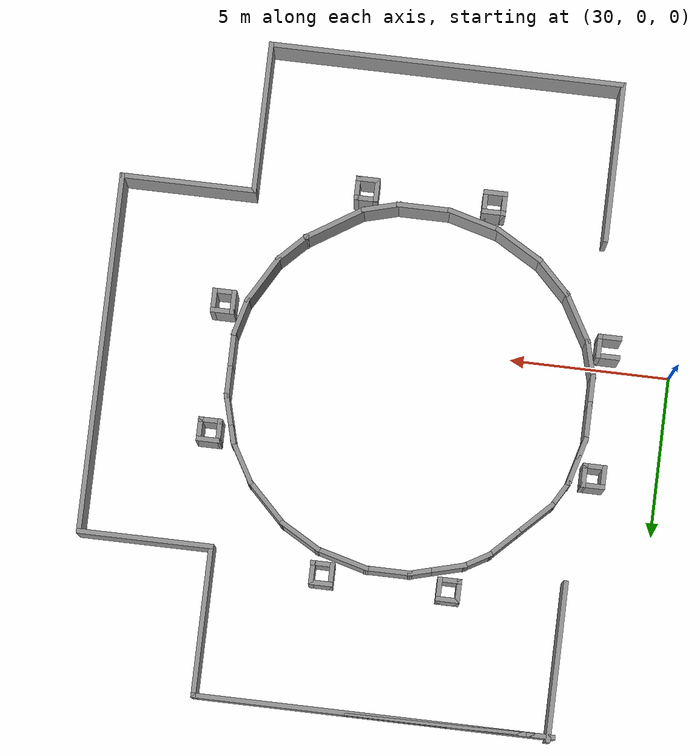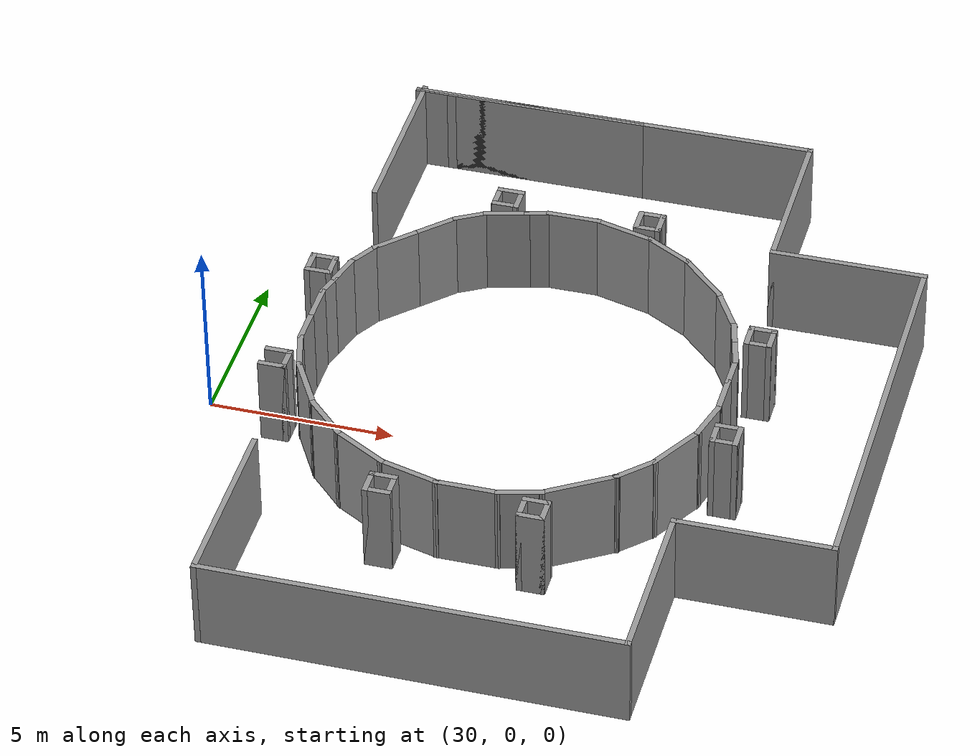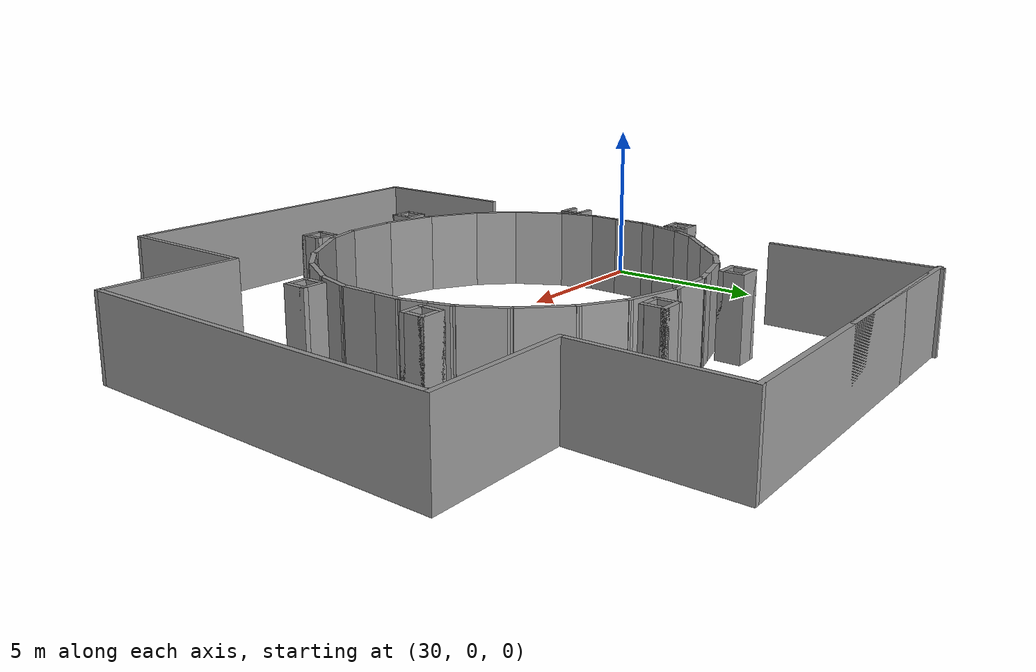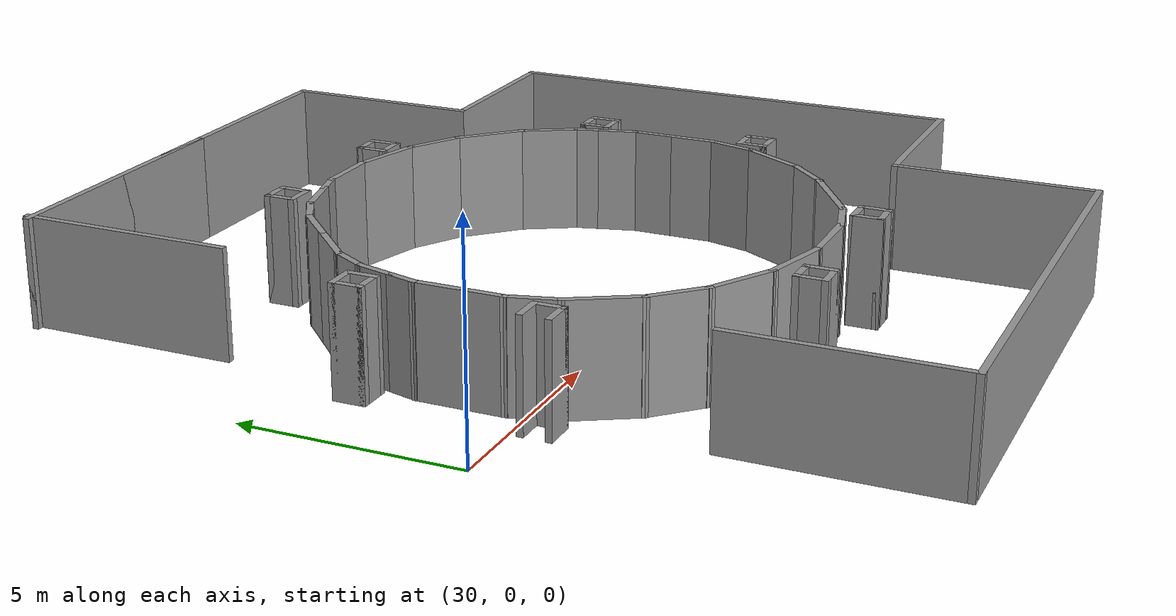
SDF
<sdf version="1.7">
 <model name="TD">
  <pose>-6.31602 -6.69767 0 0 -0 0</pose>
  <link name="Wall_104">
   <collision name="Wall_104_Collision">
    <geometry><box><size>4.25 0.15 2.5</size></box></geometry>
    <pose>0 0 1.25 0 -0 0</pose>
   </collision>
   <visual name="Wall_104_Visual">
    <pose>0 0 1.25 0 -0 0</pose>
    <geometry><box><size>4.25 0.15 2.5</size></box></geometry>
    <material>
     <script><uri>file://media/materials/scripts/gazebo.material</uri><name>Gazebo/Grey</name></script>
     <ambient>1 1 1 1</ambient>
    </material>
    <meta><layer>0</layer></meta>
   </visual>
   <pose>51.8827 2.59678 0 0 -0 3.14159</pose>
  </link>
  <link name="Wall_105">
   <collision name="Wall_105_Collision">
    <geometry><box><size>4.75 0.15 2.5</size></box></geometry>
    <pose>0 0 1.25 0 -0 0</pose>
   </collision>
   <visual name="Wall_105_Visual">
    <pose>0 0 1.25 0 -0 0</pose>
    <geometry><box><size>4.75 0.15 2.5</size></box></geometry>
    <material>
     <script><uri>file://media/materials/scripts/gazebo.material</uri><name>Gazebo/Grey</name></script>
     <ambient>1 1 1 1</ambient>
    </material>
    <meta><layer>0</layer></meta>
   </visual>
   <pose>49.8327 0.296781 0 0 -0 -1.5708</pose>
  </link>
  <link name="Wall_107">
   <collision name="Wall_107_Collision">
    <geometry><box><size>11.1374 0.15 2.5</size></box></geometry>
    <pose>0 0 1.25 0 -0 0</pose>
   </collision>
   <visual name="Wall_107_Visual">
    <pose>0 0 1.25 0 -0 0</pose>
    <geometry><box><size>11.1374 0.15 2.5</size></box></geometry>
    <material>
     <script><uri>file://media/materials/scripts/gazebo.material</uri><name>Gazebo/Grey</name></script>
     <ambient>1 1 1 1</ambient>
    </material>
    <meta><layer>0</layer></meta>
   </visual>
   <pose>44.3391 -2.00322 0 0 -0 3.14159</pose>
  </link>
  <link name="Wall_108">
   <collision name="Wall_108_Collision">
    <geometry><box><size>5 0.15 2.5</size></box></geometry>
    <pose>0 0 1.25 0 -0 0</pose>
   </collision>
   <visual name="Wall_108_Visual">
    <pose>0 0 1.25 0 -0 0</pose>
    <geometry><box><size>5 0.15 2.5</size></box></geometry>
    <material>
     <script><uri>file://media/materials/scripts/gazebo.material</uri><name>Gazebo/Grey</name></script>
     <ambient>1 1 1 1</ambient>
    </material>
    <meta><layer>0</layer></meta>
   </visual>
   <pose>38.8455 0.421781 0 0 -0 1.5708</pose>
  </link>
  <link name="Wall_293">
   <collision name="Wall_293_Collision">
    <geometry><box><size>0.75 0.15 2.5</size></box></geometry>
    <pose>0 0 1.25 0 -0 0</pose>
   </collision>
   <visual name="Wall_293_Visual">
    <pose>0 0 1.25 0 -0 0</pose>
    <geometry><box><size>0.75 0.15 2.5</size></box></geometry>
    <material>
     <script><uri>file://media/materials/scripts/gazebo.material</uri><name>Gazebo/Grey</name></script>
     <ambient>1 1 1 1</ambient>
    </material>
    <meta><layer>0</layer></meta>
   </visual>
   <pose>38.3841 10.4826 0 0 -0 0</pose>
  </link>
  <link name="Wall_294">
   <collision name="Wall_294_Collision">
    <geometry><box><size>0.75 0.15 2.5</size></box></geometry>
    <pose>0 0 1.25 0 -0 0</pose>
   </collision>
   <visual name="Wall_294_Visual">
    <pose>0 0 1.25 0 -0 0</pose>
    <geometry><box><size>0.75 0.15 2.5</size></box></geometry>
    <material>
     <script><uri>file://media/materials/scripts/gazebo.material</uri><name>Gazebo/Grey</name></script>
     <ambient>1 1 1 1</ambient>
    </material>
    <meta><layer>0</layer></meta>
   </visual>
   <pose>38.6841 10.1826 0 0 -0 -1.5708</pose>
  </link>
  <link name="Wall_295">
   <collision name="Wall_295_Collision">
    <geometry><box><size>0.75 0.15 2.5</size></box></geometry>
    <pose>0 0 1.25 0 -0 0</pose>
   </collision>
   <visual name="Wall_295_Visual">
    <pose>0 0 1.25 0 -0 0</pose>
    <geometry><box><size>0.75 0.15 2.5</size></box></geometry>
    <material>
     <script><uri>file://media/materials/scripts/gazebo.material</uri><name>Gazebo/Grey</name></script>
     <ambient>1 1 1 1</ambient>
    </material>
    <meta><layer>0</layer></meta>
   </visual>
   <pose>38.3841 9.88264 0 0 -0 3.14159</pose>
  </link>
  <link name="Wall_296">
   <collision name="Wall_296_Collision">
    <geometry><box><size>0.75 0.15 2.5</size></box></geometry>
    <pose>0 0 1.25 0 -0 0</pose>
   </collision>
   <visual name="Wall_296_Visual">
    <pose>0 0 1.25 0 -0 0</pose>
    <geometry><box><size>0.75 0.15 2.5</size></box></geometry>
    <material>
     <script><uri>file://media/materials/scripts/gazebo.material</uri><name>Gazebo/Grey</name></script>
     <ambient>1 1 1 1</ambient>
    </material>
    <meta><layer>0</layer></meta>
   </visual>
   <pose>38.0841 10.1826 0 0 -0 1.5708</pose>
  </link>
  <link name="Wall_299">
   <collision name="Wall_299_Collision">
    <geometry><box><size>0.75 0.15 2.5</size></box></geometry>
    <pose>0 0 1.25 0 -0 0</pose>
   </collision>
   <visual name="Wall_299_Visual">
    <pose>0 0 1.25 0 -0 0</pose>
    <geometry><box><size>0.75 0.15 2.5</size></box></geometry>
    <material>
     <script><uri>file://media/materials/scripts/gazebo.material</uri><name>Gazebo/Grey</name></script>
     <ambient>1 1 1 1</ambient>
    </material>
    <meta><layer>0</layer></meta>
   </visual>
   <pose>42.4212 14.4817 0 0 -0 0</pose>
  </link>
  <link name="Wall_300">
   <collision name="Wall_300_Collision">
    <geometry><box><size>0.75 0.15 2.5</size></box></geometry>
    <pose>0 0 1.25 0 -0 0</pose>
   </collision>
   <visual name="Wall_300_Visual">
    <pose>0 0 1.25 0 -0 0</pose>
    <geometry><box><size>0.75 0.15 2.5</size></box></geometry>
    <material>
     <script><uri>file://media/materials/scripts/gazebo.material</uri><name>Gazebo/Grey</name></script>
     <ambient>1 1 1 1</ambient>
    </material>
    <meta><layer>0</layer></meta>
   </visual>
   <pose>42.7212 14.1817 0 0 -0 -1.5708</pose>
  </link>
  <link name="Wall_301">
   <collision name="Wall_301_Collision">
    <geometry><box><size>0.75 0.15 2.5</size></box></geometry>
    <pose>0 0 1.25 0 -0 0</pose>
   </collision>
   <visual name="Wall_301_Visual">
    <pose>0 0 1.25 0 -0 0</pose>
    <geometry><box><size>0.75 0.15 2.5</size></box></geometry>
    <material>
     <script><uri>file://media/materials/scripts/gazebo.material</uri><name>Gazebo/Grey</name></script>
     <ambient>1 1 1 1</ambient>
    </material>
    <meta><layer>0</layer></meta>
   </visual>
   <pose>42.4212 13.8817 0 0 -0 3.14159</pose>
  </link>
  <link name="Wall_302">
   <collision name="Wall_302_Collision">
    <geometry><box><size>0.75 0.15 2.5</size></box></geometry>
    <pose>0 0 1.25 0 -0 0</pose>
   </collision>
   <visual name="Wall_302_Visual">
    <pose>0 0 1.25 0 -0 0</pose>
    <geometry><box><size>0.75 0.15 2.5</size></box></geometry>
    <material>
     <script><uri>file://media/materials/scripts/gazebo.material</uri><name>Gazebo/Grey</name></script>
     <ambient>1 1 1 1</ambient>
    </material>
    <meta><layer>0</layer></meta>
   </visual>
   <pose>42.1212 14.1817 0 0 -0 1.5708</pose>
  </link>
  <link name="Wall_306">
   <collision name="Wall_306_Collision">
    <geometry><box><size>0.75 0.15 2.5</size></box></geometry>
    <pose>0 0 1.25 0 -0 0</pose>
   </collision>
   <visual name="Wall_306_Visual">
    <pose>0 0 1.25 0 -0 0</pose>
    <geometry><box><size>0.75 0.15 2.5</size></box></geometry>
    <material>
     <script><uri>file://media/materials/scripts/gazebo.material</uri><name>Gazebo/Grey</name></script>
     <ambient>1 1 1 1</ambient>
    </material>
    <meta><layer>0</layer></meta>
   </visual>
   <pose>46.359 14.4301 0 0 -0 0</pose>
  </link>
  <link name="Wall_307">
   <collision name="Wall_307_Collision">
    <geometry><box><size>0.75 0.15 2.5</size></box></geometry>
    <pose>0 0 1.25 0 -0 0</pose>
   </collision>
   <visual name="Wall_307_Visual">
    <pose>0 0 1.25 0 -0 0</pose>
    <geometry><box><size>0.75 0.15 2.5</size></box></geometry>
    <material>
     <script><uri>file://media/materials/scripts/gazebo.material</uri><name>Gazebo/Grey</name></script>
     <ambient>1 1 1 1</ambient>
    </material>
    <meta><layer>0</layer></meta>
   </visual>
   <pose>46.659 14.1301 0 0 -0 -1.5708</pose>
  </link>
  <link name="Wall_309">
   <collision name="Wall_309_Collision">
    <geometry><box><size>0.75 0.15 2.5</size></box></geometry>
    <pose>0 0 1.25 0 -0 0</pose>
   </collision>
   <visual name="Wall_309_Visual">
    <pose>0 0 1.25 0 -0 0</pose>
    <geometry><box><size>0.75 0.15 2.5</size></box></geometry>
    <material>
     <script><uri>file://media/materials/scripts/gazebo.material</uri><name>Gazebo/Grey</name></script>
     <ambient>1 1 1 1</ambient>
    </material>
    <meta><layer>0</layer></meta>
   </visual>
   <pose>46.059 14.1301 0 0 -0 -1.5708</pose>
  </link>
  <link name="Wall_310">
   <collision name="Wall_310_Collision">
    <geometry><box><size>0.75 0.15 2.5</size></box></geometry>
    <pose>0 0 1.25 0 -0 0</pose>
   </collision>
   <visual name="Wall_310_Visual">
    <pose>0 0 1.25 0 -0 0</pose>
    <geometry><box><size>0.75 0.15 2.5</size></box></geometry>
    <material>
     <script><uri>file://media/materials/scripts/gazebo.material</uri><name>Gazebo/Grey</name></script>
     <ambient>1 1 1 1</ambient>
    </material>
    <meta><layer>0</layer></meta>
   </visual>
   <pose>46.359 13.8301 0 0 -0 0</pose>
  </link>
  <link name="Wall_311">
   <collision name="Wall_311_Collision">
    <geometry><box><size>0.16 0.15 2.5</size></box></geometry>
    <pose>0 0 1.25 0 -0 0</pose>
   </collision>
   <visual name="Wall_311_Visual">
    <pose>0 0 1.25 0 -0 0</pose>
    <geometry><box><size>0.16 0.15 2.5</size></box></geometry>
    <material>
     <script><uri>file://media/materials/scripts/gazebo.material</uri><name>Gazebo/Grey</name></script>
     <ambient>1 1 1 1</ambient>
    </material>
    <meta><layer>0</layer></meta>
   </visual>
   <pose>46.664 13.8301 0 0 -0 0</pose>
  </link>
  <link name="Wall_313">
   <collision name="Wall_313_Collision">
    <geometry><box><size>0.75 0.15 2.5</size></box></geometry>
    <pose>0 0 1.25 0 -0 0</pose>
   </collision>
   <visual name="Wall_313_Visual">
    <pose>0 0 1.25 0 -0 0</pose>
    <geometry><box><size>0.75 0.15 2.5</size></box></geometry>
    <material>
     <script><uri>file://media/materials/scripts/gazebo.material</uri><name>Gazebo/Grey</name></script>
     <ambient>1 1 1 1</ambient>
    </material>
    <meta><layer>0</layer></meta>
   </visual>
   <pose>38.3756 6.4564 0 0 -0 0</pose>
  </link>
  <link name="Wall_316">
   <collision name="Wall_316_Collision">
    <geometry><box><size>0.75 0.15 2.5</size></box></geometry>
    <pose>0 0 1.25 0 -0 0</pose>
   </collision>
   <visual name="Wall_316_Visual">
    <pose>0 0 1.25 0 -0 0</pose>
    <geometry><box><size>0.75 0.15 2.5</size></box></geometry>
    <material>
     <script><uri>file://media/materials/scripts/gazebo.material</uri><name>Gazebo/Grey</name></script>
     <ambient>1 1 1 1</ambient>
    </material>
    <meta><layer>0</layer></meta>
   </visual>
   <pose>38.6756 6.1564 0 0 -0 -1.5708</pose>
  </link>
  <link name="Wall_320">
   <collision name="Wall_320_Collision">
    <geometry><box><size>0.75 0.15 2.5</size></box></geometry>
    <pose>0 0 1.25 0 -0 0</pose>
   </collision>
   <visual name="Wall_320_Visual">
    <pose>0 0 1.25 0 -0 0</pose>
    <geometry><box><size>0.75 0.15 2.5</size></box></geometry>
    <material>
     <script><uri>file://media/materials/scripts/gazebo.material</uri><name>Gazebo/Grey</name></script>
     <ambient>1 1 1 1</ambient>
    </material>
    <meta><layer>0</layer></meta>
   </visual>
   <pose>38.3756 5.8564 0 0 -0 0</pose>
  </link>
  <link name="Wall_321">
   <collision name="Wall_321_Collision">
    <geometry><box><size>0.15 0.15 2.5</size></box></geometry>
    <pose>0 0 1.25 0 -0 0</pose>
   </collision>
   <visual name="Wall_321_Visual">
    <pose>0 0 1.25 0 -0 0</pose>
    <geometry><box><size>0.15 0.15 2.5</size></box></geometry>
    <material>
     <script><uri>file://media/materials/scripts/gazebo.material</uri><name>Gazebo/Grey</name></script>
     <ambient>1 1 1 1</ambient>
    </material>
    <meta><layer>0</layer></meta>
   </visual>
   <pose>38.6756 5.8564 0 0 -0 0</pose>
  </link>
  <link name="Wall_324">
   <collision name="Wall_324_Collision">
    <geometry><box><size>0.75 0.15 2.5</size></box></geometry>
    <pose>0 0 1.25 0 -0 0</pose>
   </collision>
   <visual name="Wall_324_Visual">
    <pose>0 0 1.25 0 -0 0</pose>
    <geometry><box><size>0.75 0.15 2.5</size></box></geometry>
    <material>
     <script><uri>file://media/materials/scripts/gazebo.material</uri><name>Gazebo/Grey</name></script>
     <ambient>1 1 1 1</ambient>
    </material>
    <meta><layer>0</layer></meta>
   </visual>
   <pose>42.3886 2.40609 0 0 -0 0</pose>
  </link>
  <link name="Wall_325">
   <collision name="Wall_325_Collision">
    <geometry><box><size>0.75 0.15 2.5</size></box></geometry>
    <pose>0 0 1.25 0 -0 0</pose>
   </collision>
   <visual name="Wall_325_Visual">
    <pose>0 0 1.25 0 -0 0</pose>
    <geometry><box><size>0.75 0.15 2.5</size></box></geometry>
    <material>
     <script><uri>file://media/materials/scripts/gazebo.material</uri><name>Gazebo/Grey</name></script>
     <ambient>1 1 1 1</ambient>
    </material>
    <meta><layer>0</layer></meta>
   </visual>
   <pose>42.6886 2.10609 0 0 -0 -1.5708</pose>
  </link>
  <link name="Wall_326">
   <collision name="Wall_326_Collision">
    <geometry><box><size>0.75 0.15 2.5</size></box></geometry>
    <pose>0 0 1.25 0 -0 0</pose>
   </collision>
   <visual name="Wall_326_Visual">
    <pose>0 0 1.25 0 -0 0</pose>
    <geometry><box><size>0.75 0.15 2.5</size></box></geometry>
    <material>
     <script><uri>file://media/materials/scripts/gazebo.material</uri><name>Gazebo/Grey</name></script>
     <ambient>1 1 1 1</ambient>
    </material>
    <meta><layer>0</layer></meta>
   </visual>
   <pose>42.3886 1.80609 0 0 -0 3.14159</pose>
  </link>
  <link name="Wall_327">
   <collision name="Wall_327_Collision">
    <geometry><box><size>0.75 0.15 2.5</size></box></geometry>
    <pose>0 0 1.25 0 -0 0</pose>
   </collision>
   <visual name="Wall_327_Visual">
    <pose>0 0 1.25 0 -0 0</pose>
    <geometry><box><size>0.75 0.15 2.5</size></box></geometry>
    <material>
     <script><uri>file://media/materials/scripts/gazebo.material</uri><name>Gazebo/Grey</name></script>
     <ambient>1 1 1 1</ambient>
    </material>
    <meta><layer>0</layer></meta>
   </visual>
   <pose>42.0886 2.10609 0 0 -0 1.5708</pose>
  </link>
  <link name="Wall_328">
   <collision name="Wall_328_Collision">
    <geometry><box><size>0.15 0.15 2.5</size></box></geometry>
    <pose>0 0 1.25 0 -0 0</pose>
   </collision>
   <visual name="Wall_328_Visual">
    <pose>0 0 1.25 0 -0 0</pose>
    <geometry><box><size>0.15 0.15 2.5</size></box></geometry>
    <material>
     <script><uri>file://media/materials/scripts/gazebo.material</uri><name>Gazebo/Grey</name></script>
     <ambient>1 1 1 1</ambient>
    </material>
    <meta><layer>0</layer></meta>
   </visual>
   <pose>42.0886 2.40609 0 0 -0 0</pose>
  </link>
  <link name="Wall_329">
   <collision name="Wall_329_Collision">
    <geometry><box><size>0.16 0.15 2.5</size></box></geometry>
    <pose>0 0 1.25 0 -0 0</pose>
   </collision>
   <visual name="Wall_329_Visual">
    <pose>0 0 1.25 0 -0 0</pose>
    <geometry><box><size>0.16 0.15 2.5</size></box></geometry>
    <material>
     <script><uri>file://media/materials/scripts/gazebo.material</uri><name>Gazebo/Grey</name></script>
     <ambient>1 1 1 1</ambient>
    </material>
    <meta><layer>0</layer></meta>
   </visual>
   <pose>42.0936 2.40609 0 0 -0 0</pose>
  </link>
  <link name="Wall_331">
   <collision name="Wall_331_Collision">
    <geometry><box><size>0.75 0.15 2.5</size></box></geometry>
    <pose>0 0 1.25 0 -0 0</pose>
   </collision>
   <visual name="Wall_331_Visual">
    <pose>0 0 1.25 0 -0 0</pose>
    <geometry><box><size>0.75 0.15 2.5</size></box></geometry>
    <material>
     <script><uri>file://media/materials/scripts/gazebo.material</uri><name>Gazebo/Grey</name></script>
     <ambient>1 1 1 1</ambient>
    </material>
    <meta><layer>0</layer></meta>
   </visual>
   <pose>46.0603 2.14499 0 0 -0 -1.5708</pose>
  </link>
  <link name="Wall_332">
   <collision name="Wall_332_Collision">
    <geometry><box><size>0.75 0.15 2.5</size></box></geometry>
    <pose>0 0 1.25 0 -0 0</pose>
   </collision>
   <visual name="Wall_332_Visual">
    <pose>0 0 1.25 0 -0 0</pose>
    <geometry><box><size>0.75 0.15 2.5</size></box></geometry>
    <material>
     <script><uri>file://media/materials/scripts/gazebo.material</uri><name>Gazebo/Grey</name></script>
     <ambient>1 1 1 1</ambient>
    </material>
    <meta><layer>0</layer></meta>
   </visual>
   <pose>46.3603 1.84499 0 0 -0 0</pose>
  </link>
  <link name="Wall_333">
   <collision name="Wall_333_Collision">
    <geometry><box><size>0.75 0.15 2.5</size></box></geometry>
    <pose>0 0 1.25 0 -0 0</pose>
   </collision>
   <visual name="Wall_333_Visual">
    <pose>0 0 1.25 0 -0 0</pose>
    <geometry><box><size>0.75 0.15 2.5</size></box></geometry>
    <material>
     <script><uri>file://media/materials/scripts/gazebo.material</uri><name>Gazebo/Grey</name></script>
     <ambient>1 1 1 1</ambient>
    </material>
    <meta><layer>0</layer></meta>
   </visual>
   <pose>46.6603 2.14499 0 0 -0 1.5708</pose>
  </link>
  <link name="Wall_334">
   <collision name="Wall_334_Collision">
    <geometry><box><size>0.75 0.15 2.5</size></box></geometry>
    <pose>0 0 1.25 0 -0 0</pose>
   </collision>
   <visual name="Wall_334_Visual">
    <pose>0 0 1.25 0 -0 0</pose>
    <geometry><box><size>0.75 0.15 2.5</size></box></geometry>
    <material>
     <script><uri>file://media/materials/scripts/gazebo.material</uri><name>Gazebo/Grey</name></script>
     <ambient>1 1 1 1</ambient>
    </material>
    <meta><layer>0</layer></meta>
   </visual>
   <pose>46.3603 2.44498 0 0 -0 3.14159</pose>
  </link>
  <link name="Wall_336">
   <collision name="Wall_336_Collision">
    <geometry><box><size>0.75 0.15 2.5</size></box></geometry>
    <pose>0 0 1.25 0 -0 0</pose>
   </collision>
   <visual name="Wall_336_Visual">
    <pose>0 0 1.25 0 -0 0</pose>
    <geometry><box><size>0.75 0.15 2.5</size></box></geometry>
    <material>
     <script><uri>file://media/materials/scripts/gazebo.material</uri><name>Gazebo/Grey</name></script>
     <ambient>1 1 1 1</ambient>
    </material>
    <meta><layer>0</layer></meta>
   </visual>
   <pose>50.0166 10.1344 0 0 -0 -1.5708</pose>
  </link>
  <link name="Wall_337">
   <collision name="Wall_337_Collision">
    <geometry><box><size>0.75 0.15 2.5</size></box></geometry>
    <pose>0 0 1.25 0 -0 0</pose>
   </collision>
   <visual name="Wall_337_Visual">
    <pose>0 0 1.25 0 -0 0</pose>
    <geometry><box><size>0.75 0.15 2.5</size></box></geometry>
    <material>
     <script><uri>file://media/materials/scripts/gazebo.material</uri><name>Gazebo/Grey</name></script>
     <ambient>1 1 1 1</ambient>
    </material>
    <meta><layer>0</layer></meta>
   </visual>
   <pose>50.3166 9.83444 0 0 -0 0</pose>
  </link>
  <link name="Wall_338">
   <collision name="Wall_338_Collision">
    <geometry><box><size>0.75 0.15 2.5</size></box></geometry>
    <pose>0 0 1.25 0 -0 0</pose>
   </collision>
   <visual name="Wall_338_Visual">
    <pose>0 0 1.25 0 -0 0</pose>
    <geometry><box><size>0.75 0.15 2.5</size></box></geometry>
    <material>
     <script><uri>file://media/materials/scripts/gazebo.material</uri><name>Gazebo/Grey</name></script>
     <ambient>1 1 1 1</ambient>
    </material>
    <meta><layer>0</layer></meta>
   </visual>
   <pose>50.6166 10.1344 0 0 -0 1.5708</pose>
  </link>
  <link name="Wall_340">
   <collision name="Wall_340_Collision">
    <geometry><box><size>0.75 0.15 2.5</size></box></geometry>
    <pose>0 0 1.25 0 -0 0</pose>
   </collision>
   <visual name="Wall_340_Visual">
    <pose>0 0 1.25 0 -0 0</pose>
    <geometry><box><size>0.75 0.15 2.5</size></box></geometry>
    <material>
     <script><uri>file://media/materials/scripts/gazebo.material</uri><name>Gazebo/Grey</name></script>
     <ambient>1 1 1 1</ambient>
    </material>
    <meta><layer>0</layer></meta>
   </visual>
   <pose>50.3166 10.4344 0 0 -0 0</pose>
  </link>
  <link name="Wall_342">
   <collision name="Wall_342_Collision">
    <geometry><box><size>0.75 0.15 2.5</size></box></geometry>
    <pose>0 0 1.25 0 -0 0</pose>
   </collision>
   <visual name="Wall_342_Visual">
    <pose>0 0 1.25 0 -0 0</pose>
    <geometry><box><size>0.75 0.15 2.5</size></box></geometry>
    <material>
     <script><uri>file://media/materials/scripts/gazebo.material</uri><name>Gazebo/Grey</name></script>
     <ambient>1 1 1 1</ambient>
    </material>
    <meta><layer>0</layer></meta>
   </visual>
   <pose>50.0557 6.12388 0 0 -0 -1.5708</pose>
  </link>
  <link name="Wall_343">
   <collision name="Wall_343_Collision">
    <geometry><box><size>0.75 0.15 2.5</size></box></geometry>
    <pose>0 0 1.25 0 -0 0</pose>
   </collision>
   <visual name="Wall_343_Visual">
    <pose>0 0 1.25 0 -0 0</pose>
    <geometry><box><size>0.75 0.15 2.5</size></box></geometry>
    <material>
     <script><uri>file://media/materials/scripts/gazebo.material</uri><name>Gazebo/Grey</name></script>
     <ambient>1 1 1 1</ambient>
    </material>
    <meta><layer>0</layer></meta>
   </visual>
   <pose>50.3557 5.82388 0 0 -0 0</pose>
  </link>
  <link name="Wall_344">
   <collision name="Wall_344_Collision">
    <geometry><box><size>0.75 0.15 2.5</size></box></geometry>
    <pose>0 0 1.25 0 -0 0</pose>
   </collision>
   <visual name="Wall_344_Visual">
    <pose>0 0 1.25 0 -0 0</pose>
    <geometry><box><size>0.75 0.15 2.5</size></box></geometry>
    <material>
     <script><uri>file://media/materials/scripts/gazebo.material</uri><name>Gazebo/Grey</name></script>
     <ambient>1 1 1 1</ambient>
    </material>
    <meta><layer>0</layer></meta>
   </visual>
   <pose>50.6557 6.12388 0 0 -0 1.5708</pose>
  </link>
  <link name="Wall_345">
   <collision name="Wall_345_Collision">
    <geometry><box><size>0.75 0.15 2.5</size></box></geometry>
    <pose>0 0 1.25 0 -0 0</pose>
   </collision>
   <visual name="Wall_345_Visual">
    <pose>0 0 1.25 0 -0 0</pose>
    <geometry><box><size>0.75 0.15 2.5</size></box></geometry>
    <material>
     <script><uri>file://media/materials/scripts/gazebo.material</uri><name>Gazebo/Grey</name></script>
     <ambient>1 1 1 1</ambient>
    </material>
    <meta><layer>0</layer></meta>
   </visual>
   <pose>50.3557 6.42388 0 0 -0 3.14159</pose>
  </link>
  <link name="Wall_347">
   <collision name="Wall_347_Collision">
    <geometry><box><size>1.25 0.15 2.5</size></box></geometry>
    <pose>0 0 1.25 0 -0 0</pose>
   </collision>
   <visual name="Wall_347_Visual">
    <pose>0 0 1.25 0 -0 0</pose>
    <geometry><box><size>1.25 0.15 2.5</size></box></geometry>
    <material>
     <script><uri>file://media/materials/scripts/gazebo.material</uri><name>Gazebo/Grey</name></script>
     <ambient>1 1 1 1</ambient>
    </material>
    <meta><layer>0</layer></meta>
   </visual>
   <pose>40.9009 12.5544 0 0 -0 0.785398</pose>
  </link>
  <link name="Wall_349">
   <collision name="Wall_349_Collision">
    <geometry><box><size>1 0.15 2.5</size></box></geometry>
    <pose>0 0 1.25 0 -0 0</pose>
   </collision>
   <visual name="Wall_349_Visual">
    <pose>0 0 1.25 0 -0 0</pose>
    <geometry><box><size>1 0.15 2.5</size></box></geometry>
    <material>
     <script><uri>file://media/materials/scripts/gazebo.material</uri><name>Gazebo/Grey</name></script>
     <ambient>1 1 1 1</ambient>
    </material>
    <meta><layer>0</layer></meta>
   </visual>
   <pose>41.6578 13.1558 0 0 -0 0.523599</pose>
  </link>
  <link name="Wall_350">
   <collision name="Wall_350_Collision">
    <geometry><box><size>1.25 0.15 2.5</size></box></geometry>
    <pose>0 0 1.25 0 -0 0</pose>
   </collision>
   <visual name="Wall_350_Visual">
    <pose>0 0 1.25 0 -0 0</pose>
    <geometry><box><size>1.25 0.15 2.5</size></box></geometry>
    <material>
     <script><uri>file://media/materials/scripts/gazebo.material</uri><name>Gazebo/Grey</name></script>
     <ambient>1 1 1 1</ambient>
    </material>
    <meta><layer>0</layer></meta>
   </visual>
   <pose>42.5572 13.5106 0 0 -0 0.261799</pose>
  </link>
  <link name="Wall_351">
   <collision name="Wall_351_Collision">
    <geometry><box><size>0.75 0.15 2.5</size></box></geometry>
    <pose>0 0 1.25 0 -0 0</pose>
   </collision>
   <visual name="Wall_351_Visual">
    <pose>0 0 1.25 0 -0 0</pose>
    <geometry><box><size>0.75 0.15 2.5</size></box></geometry>
    <material>
     <script><uri>file://media/materials/scripts/gazebo.material</uri><name>Gazebo/Grey</name></script>
     <ambient>1 1 1 1</ambient>
    </material>
    <meta><layer>0</layer></meta>
   </visual>
   <pose>43.3782 13.7306 0 0 -0 0.261799</pose>
  </link>
  <link name="Wall_352">
   <collision name="Wall_352_Collision">
    <geometry><box><size>1.5 0.15 2.5</size></box></geometry>
    <pose>0 0 1.25 0 -0 0</pose>
   </collision>
   <visual name="Wall_352_Visual">
    <pose>0 0 1.25 0 -0 0</pose>
    <geometry><box><size>1.5 0.15 2.5</size></box></geometry>
    <material>
     <script><uri>file://media/materials/scripts/gazebo.material</uri><name>Gazebo/Grey</name></script>
     <ambient>1 1 1 1</ambient>
    </material>
    <meta><layer>0</layer></meta>
   </visual>
   <pose>44.343 13.8083 0 0 -0 0</pose>
  </link>
  <link name="Wall_353">
   <collision name="Wall_353_Collision">
    <geometry><box><size>1.75 0.15 2.5</size></box></geometry>
    <pose>0 0 1.25 0 -0 0</pose>
   </collision>
   <visual name="Wall_353_Visual">
    <pose>0 0 1.25 0 -0 0</pose>
    <geometry><box><size>1.75 0.15 2.5</size></box></geometry>
    <material>
     <script><uri>file://media/materials/scripts/gazebo.material</uri><name>Gazebo/Grey</name></script>
     <ambient>1 1 1 1</ambient>
    </material>
    <meta><layer>0</layer></meta>
   </visual>
   <pose>45.7907 13.6012 0 0 -0 -0.261799</pose>
  </link>
  <link name="Wall_354">
   <collision name="Wall_354_Collision">
    <geometry><box><size>1.5 0.15 2.5</size></box></geometry>
    <pose>0 0 1.25 0 -0 0</pose>
   </collision>
   <visual name="Wall_354_Visual">
    <pose>0 0 1.25 0 -0 0</pose>
    <geometry><box><size>1.5 0.15 2.5</size></box></geometry>
    <material>
     <script><uri>file://media/materials/scripts/gazebo.material</uri><name>Gazebo/Grey</name></script>
     <ambient>1 1 1 1</ambient>
    </material>
    <meta><layer>0</layer></meta>
   </visual>
   <pose>47.148 13.0567 0 0 -0 -0.523599</pose>
  </link>
  <link name="Wall_355">
   <collision name="Wall_355_Collision">
    <geometry><box><size>1.75 0.15 2.5</size></box></geometry>
    <pose>0 0 1.25 0 -0 0</pose>
   </collision>
   <visual name="Wall_355_Visual">
    <pose>0 0 1.25 0 -0 0</pose>
    <geometry><box><size>1.75 0.15 2.5</size></box></geometry>
    <material>
     <script><uri>file://media/materials/scripts/gazebo.material</uri><name>Gazebo/Grey</name></script>
     <ambient>1 1 1 1</ambient>
    </material>
    <meta><layer>0</layer></meta>
   </visual>
   <pose>48.2983 12.1535 0 0 -0 -0.785398</pose>
  </link>
  <link name="Wall_358">
   <collision name="Wall_358_Collision">
    <geometry><box><size>1.5 0.15 2.5</size></box></geometry>
    <pose>0 0 1.25 0 -0 0</pose>
   </collision>
   <visual name="Wall_358_Visual">
    <pose>0 0 1.25 0 -0 0</pose>
    <geometry><box><size>1.5 0.15 2.5</size></box></geometry>
    <material>
     <script><uri>file://media/materials/scripts/gazebo.material</uri><name>Gazebo/Grey</name></script>
     <ambient>1 1 1 1</ambient>
    </material>
    <meta><layer>0</layer></meta>
   </visual>
   <pose>49.2015 11.0032 0 0 -0 -1.0472</pose>
  </link>
  <link name="Wall_359">
   <collision name="Wall_359_Collision">
    <geometry><box><size>0.75 0.15 2.5</size></box></geometry>
    <pose>0 0 1.25 0 -0 0</pose>
   </collision>
   <visual name="Wall_359_Visual">
    <pose>0 0 1.25 0 -0 0</pose>
    <geometry><box><size>0.75 0.15 2.5</size></box></geometry>
    <material>
     <script><uri>file://media/materials/scripts/gazebo.material</uri><name>Gazebo/Grey</name></script>
     <ambient>1 1 1 1</ambient>
    </material>
    <meta><layer>0</layer></meta>
   </visual>
   <pose>49.6166 10.1289 0 0 -0 -1.309</pose>
  </link>
  <link name="Wall_361">
   <collision name="Wall_361_Collision">
    <geometry><box><size>1 0.15 2.5</size></box></geometry>
    <pose>0 0 1.25 0 -0 0</pose>
   </collision>
   <visual name="Wall_361_Visual">
    <pose>0 0 1.25 0 -0 0</pose>
    <geometry><box><size>1 0.15 2.5</size></box></geometry>
    <material>
     <script><uri>file://media/materials/scripts/gazebo.material</uri><name>Gazebo/Grey</name></script>
     <ambient>1 1 1 1</ambient>
    </material>
    <meta><layer>0</layer></meta>
   </visual>
   <pose>49.8042 9.4286 0 0 -0 -1.309</pose>
  </link>
  <link name="Wall_362">
   <collision name="Wall_362_Collision">
    <geometry><box><size>1 0.15 2.5</size></box></geometry>
    <pose>0 0 1.25 0 -0 0</pose>
   </collision>
   <visual name="Wall_362_Visual">
    <pose>0 0 1.25 0 -0 0</pose>
    <geometry><box><size>1 0.15 2.5</size></box></geometry>
    <material>
     <script><uri>file://media/materials/scripts/gazebo.material</uri><name>Gazebo/Grey</name></script>
     <ambient>1 1 1 1</ambient>
    </material>
    <meta><layer>0</layer></meta>
   </visual>
   <pose>49.9142 8.59308 0 0 -0 -1.5708</pose>
  </link>
  <link name="Wall_363">
   <collision name="Wall_363_Collision">
    <geometry><box><size>1.25 0.15 2.5</size></box></geometry>
    <pose>0 0 1.25 0 -0 0</pose>
   </collision>
   <visual name="Wall_363_Visual">
    <pose>0 0 1.25 0 -0 0</pose>
    <geometry><box><size>1.25 0.15 2.5</size></box></geometry>
    <material>
     <script><uri>file://media/materials/scripts/gazebo.material</uri><name>Gazebo/Grey</name></script>
     <ambient>1 1 1 1</ambient>
    </material>
    <meta><layer>0</layer></meta>
   </visual>
   <pose>49.9142 7.61808 0 0 -0 -1.5708</pose>
  </link>
  <link name="Wall_364">
   <collision name="Wall_364_Collision">
    <geometry><box><size>1.25 0.15 2.5</size></box></geometry>
    <pose>0 0 1.25 0 -0 0</pose>
   </collision>
   <visual name="Wall_364_Visual">
    <pose>0 0 1.25 0 -0 0</pose>
    <geometry><box><size>1.25 0.15 2.5</size></box></geometry>
    <material>
     <script><uri>file://media/materials/scripts/gazebo.material</uri><name>Gazebo/Grey</name></script>
     <ambient>1 1 1 1</ambient>
    </material>
    <meta><layer>0</layer></meta>
   </visual>
   <pose>49.7719 6.53682 0 0 -0 -1.8326</pose>
  </link>
  <link name="Wall_365">
   <collision name="Wall_365_Collision">
    <geometry><box><size>1.75 0.15 2.5</size></box></geometry>
    <pose>0 0 1.25 0 -0 0</pose>
   </collision>
   <visual name="Wall_365_Visual">
    <pose>0 0 1.25 0 -0 0</pose>
    <geometry><box><size>1.75 0.15 2.5</size></box></geometry>
    <material>
     <script><uri>file://media/materials/scripts/gazebo.material</uri><name>Gazebo/Grey</name></script>
     <ambient>1 1 1 1</ambient>
    </material>
    <meta><layer>0</layer></meta>
   </visual>
   <pose>49.2295 5.31274 0 0 -0 -2.0944</pose>
  </link>
  <link name="Wall_366">
   <collision name="Wall_366_Collision">
    <geometry><box><size>1.25 0.15 2.5</size></box></geometry>
    <pose>0 0 1.25 0 -0 0</pose>
   </collision>
   <visual name="Wall_366_Visual">
    <pose>0 0 1.25 0 -0 0</pose>
    <geometry><box><size>1.25 0.15 2.5</size></box></geometry>
    <material>
     <script><uri>file://media/materials/scripts/gazebo.material</uri><name>Gazebo/Grey</name></script>
     <ambient>1 1 1 1</ambient>
    </material>
    <meta><layer>0</layer></meta>
   </visual>
   <pose>48.4406 4.23101 0 0 -0 -2.35619</pose>
  </link>
  <link name="Wall_368">
   <collision name="Wall_368_Collision">
    <geometry><box><size>1.5 0.15 2.5</size></box></geometry>
    <pose>0 0 1.25 0 -0 0</pose>
   </collision>
   <visual name="Wall_368_Visual">
    <pose>0 0 1.25 0 -0 0</pose>
    <geometry><box><size>1.5 0.15 2.5</size></box></geometry>
    <material>
     <script><uri>file://media/materials/scripts/gazebo.material</uri><name>Gazebo/Grey</name></script>
     <ambient>1 1 1 1</ambient>
    </material>
    <meta><layer>0</layer></meta>
   </visual>
   <pose>40.0347 11.6882 0 0 -0 -2.35619</pose>
  </link>
  <link name="Wall_370">
   <collision name="Wall_370_Collision">
    <geometry><box><size>1 0.15 2.5</size></box></geometry>
    <pose>0 0 1.25 0 -0 0</pose>
   </collision>
   <visual name="Wall_370_Visual">
    <pose>0 0 1.25 0 -0 0</pose>
    <geometry><box><size>1 0.15 2.5</size></box></geometry>
    <material>
     <script><uri>file://media/materials/scripts/gazebo.material</uri><name>Gazebo/Grey</name></script>
     <ambient>1 1 1 1</ambient>
    </material>
    <meta><layer>0</layer></meta>
   </visual>
   <pose>39.3449 10.8428 0 0 -0 -2.0944</pose>
  </link>
  <link name="Wall_371">
   <collision name="Wall_371_Collision">
    <geometry><box><size>1 0.15 2.5</size></box></geometry>
    <pose>0 0 1.25 0 -0 0</pose>
   </collision>
   <visual name="Wall_371_Visual">
    <pose>0 0 1.25 0 -0 0</pose>
    <geometry><box><size>1 0.15 2.5</size></box></geometry>
    <material>
     <script><uri>file://media/materials/scripts/gazebo.material</uri><name>Gazebo/Grey</name></script>
     <ambient>1 1 1 1</ambient>
    </material>
    <meta><layer>0</layer></meta>
   </visual>
   <pose>39.0224 10.0642 0 0 -0 -1.8326</pose>
  </link>
  <link name="Wall_372">
   <collision name="Wall_372_Collision">
    <geometry><box><size>0.75 0.15 2.5</size></box></geometry>
    <pose>0 0 1.25 0 -0 0</pose>
   </collision>
   <visual name="Wall_372_Visual">
    <pose>0 0 1.25 0 -0 0</pose>
    <geometry><box><size>0.75 0.15 2.5</size></box></geometry>
    <material>
     <script><uri>file://media/materials/scripts/gazebo.material</uri><name>Gazebo/Grey</name></script>
     <ambient>1 1 1 1</ambient>
    </material>
    <meta><layer>0</layer></meta>
   </visual>
   <pose>38.8347 9.36395 0 0 -0 -1.8326</pose>
  </link>
  <link name="Wall_373">
   <collision name="Wall_373_Collision">
    <geometry><box><size>1.25 0.15 2.5</size></box></geometry>
    <pose>0 0 1.25 0 -0 0</pose>
   </collision>
   <visual name="Wall_373_Visual">
    <pose>0 0 1.25 0 -0 0</pose>
    <geometry><box><size>1.25 0.15 2.5</size></box></geometry>
    <material>
     <script><uri>file://media/materials/scripts/gazebo.material</uri><name>Gazebo/Grey</name></script>
     <ambient>1 1 1 1</ambient>
    </material>
    <meta><layer>0</layer></meta>
   </visual>
   <pose>38.7571 8.52417 0 0 -0 -1.5708</pose>
  </link>
  <link name="Wall_374">
   <collision name="Wall_374_Collision">
    <geometry><box><size>1 0.15 2.5</size></box></geometry>
    <pose>0 0 1.25 0 -0 0</pose>
   </collision>
   <visual name="Wall_374_Visual">
    <pose>0 0 1.25 0 -0 0</pose>
    <geometry><box><size>1 0.15 2.5</size></box></geometry>
    <material>
     <script><uri>file://media/materials/scripts/gazebo.material</uri><name>Gazebo/Grey</name></script>
     <ambient>1 1 1 1</ambient>
    </material>
    <meta><layer>0</layer></meta>
   </visual>
   <pose>38.7571 7.54917 0 0 -0 -1.5708</pose>
  </link>
  <link name="Wall_375">
   <collision name="Wall_375_Collision">
    <geometry><box><size>1.25 0.15 2.5</size></box></geometry>
    <pose>0 0 1.25 0 -0 0</pose>
   </collision>
   <visual name="Wall_375_Visual">
    <pose>0 0 1.25 0 -0 0</pose>
    <geometry><box><size>1.25 0.15 2.5</size></box></geometry>
    <material>
     <script><uri>file://media/materials/scripts/gazebo.material</uri><name>Gazebo/Grey</name></script>
     <ambient>1 1 1 1</ambient>
    </material>
    <meta><layer>0</layer></meta>
   </visual>
   <pose>38.8994 6.59291 0 0 -0 -1.309</pose>
  </link>
  <link name="Wall_377">
   <collision name="Wall_377_Collision">
    <geometry><box><size>1.75 0.15 2.5</size></box></geometry>
    <pose>0 0 1.25 0 -0 0</pose>
   </collision>
   <visual name="Wall_377_Visual">
    <pose>0 0 1.25 0 -0 0</pose>
    <geometry><box><size>1.75 0.15 2.5</size></box></geometry>
    <material>
     <script><uri>file://media/materials/scripts/gazebo.material</uri><name>Gazebo/Grey</name></script>
     <ambient>1 1 1 1</ambient>
    </material>
    <meta><layer>0</layer></meta>
   </visual>
   <pose>39.4418 5.36883 0 0 -0 -1.0472</pose>
  </link>
  <link name="Wall_378">
   <collision name="Wall_378_Collision">
    <geometry><box><size>1.5 0.15 2.5</size></box></geometry>
    <pose>0 0 1.25 0 -0 0</pose>
   </collision>
   <visual name="Wall_378_Visual">
    <pose>0 0 1.25 0 -0 0</pose>
    <geometry><box><size>1.5 0.15 2.5</size></box></geometry>
    <material>
     <script><uri>file://media/materials/scripts/gazebo.material</uri><name>Gazebo/Grey</name></script>
     <ambient>1 1 1 1</ambient>
    </material>
    <meta><layer>0</layer></meta>
   </visual>
   <pose>40.3191 4.19871 0 0 -0 -0.785398</pose>
  </link>
  <link name="Wall_379">
   <collision name="Wall_379_Collision">
    <geometry><box><size>1.75 0.15 2.5</size></box></geometry>
    <pose>0 0 1.25 0 -0 0</pose>
   </collision>
   <visual name="Wall_379_Visual">
    <pose>0 0 1.25 0 -0 0</pose>
    <geometry><box><size>1.75 0.15 2.5</size></box></geometry>
    <material>
     <script><uri>file://media/materials/scripts/gazebo.material</uri><name>Gazebo/Grey</name></script>
     <ambient>1 1 1 1</ambient>
    </material>
    <meta><layer>0</layer></meta>
   </visual>
   <pose>41.4892 3.32142 0 0 -0 -0.523599</pose>
  </link>
  <link name="Wall_380">
   <collision name="Wall_380_Collision">
    <geometry><box><size>1.75 0.15 2.5</size></box></geometry>
    <pose>0 0 1.25 0 -0 0</pose>
   </collision>
   <visual name="Wall_380_Visual">
    <pose>0 0 1.25 0 -0 0</pose>
    <geometry><box><size>1.75 0.15 2.5</size></box></geometry>
    <material>
     <script><uri>file://media/materials/scripts/gazebo.material</uri><name>Gazebo/Grey</name></script>
     <ambient>1 1 1 1</ambient>
    </material>
    <meta><layer>0</layer></meta>
   </visual>
   <pose>42.9548 2.71436 0 0 -0 -0.261799</pose>
  </link>
  <link name="Wall_381">
   <collision name="Wall_381_Collision">
    <geometry><box><size>1.75 0.15 2.5</size></box></geometry>
    <pose>0 0 1.25 0 -0 0</pose>
   </collision>
   <visual name="Wall_381_Visual">
    <pose>0 0 1.25 0 -0 0</pose>
    <geometry><box><size>1.75 0.15 2.5</size></box></geometry>
    <material>
     <script><uri>file://media/materials/scripts/gazebo.material</uri><name>Gazebo/Grey</name></script>
     <ambient>1 1 1 1</ambient>
    </material>
    <meta><layer>0</layer></meta>
   </visual>
   <pose>44.5275 2.50731 0 0 -0 0</pose>
  </link>
  <link name="Wall_382">
   <collision name="Wall_382_Collision">
    <geometry><box><size>1.25 0.15 2.5</size></box></geometry>
    <pose>0 0 1.25 0 -0 0</pose>
   </collision>
   <visual name="Wall_382_Visual">
    <pose>0 0 1.25 0 -0 0</pose>
    <geometry><box><size>1.25 0.15 2.5</size></box></geometry>
    <material>
     <script><uri>file://media/materials/scripts/gazebo.material</uri><name>Gazebo/Grey</name></script>
     <ambient>1 1 1 1</ambient>
    </material>
    <meta><layer>0</layer></meta>
   </visual>
   <pose>45.8588 2.64966 0 0 -0 0.261799</pose>
  </link>
  <link name="Wall_383">
   <collision name="Wall_383_Collision">
    <geometry><box><size>2.11571 0.15 2.5</size></box></geometry>
    <pose>0 0 1.25 0 -0 0</pose>
   </collision>
   <visual name="Wall_383_Visual">
    <pose>0 0 1.25 0 -0 0</pose>
    <geometry><box><size>2.11571 0.15 2.5</size></box></geometry>
    <material>
     <script><uri>file://media/materials/scripts/gazebo.material</uri><name>Gazebo/Grey</name></script>
     <ambient>1 1 1 1</ambient>
    </material>
    <meta><layer>0</layer></meta>
   </visual>
   <pose>47.2209 3.31705 0 0 -0 0.563571</pose>
  </link>
  <link name="Wall_384">
   <collision name="Wall_384_Collision">
    <geometry><box><size>0.16 0.15 2.5</size></box></geometry>
    <pose>0 0 1.25 0 -0 0</pose>
   </collision>
   <visual name="Wall_384_Visual">
    <pose>0 0 1.25 0 -0 0</pose>
    <geometry><box><size>0.16 0.15 2.5</size></box></geometry>
    <material>
     <script><uri>file://media/materials/scripts/gazebo.material</uri><name>Gazebo/Grey</name></script>
     <ambient>1 1 1 1</ambient>
    </material>
    <meta><layer>0</layer></meta>
   </visual>
   <pose>48.0567 3.8421 0 0 -0 0</pose>
  </link>
  <link name="Wall_81">
   <collision name="Wall_81_Collision">
    <geometry><box><size>5 0.15 2.5</size></box></geometry>
    <pose>0 0 1.25 0 -0 0</pose>
   </collision>
   <visual name="Wall_81_Visual">
    <pose>0 0 1.25 0 -0 0</pose>
    <geometry><box><size>5 0.15 2.5</size></box></geometry>
    <material>
     <script><uri>file://media/materials/scripts/gazebo.material</uri><name>Gazebo/Grey</name></script>
     <ambient>1 1 1 1</ambient>
    </material>
    <meta><layer>0</layer></meta>
   </visual>
   <pose>38.8673 15.9729 0 0 -0 1.5708</pose>
  </link>
  <link name="Wall_85">
   <collision name="Wall_85_Collision">
    <geometry><box><size>0.25 0.15 2.5</size></box></geometry>
    <pose>0 0 1.25 0 -0 0</pose>
   </collision>
   <visual name="Wall_85_Visual">
    <pose>0 0 1.25 0 -0 0</pose>
    <geometry><box><size>0.25 0.15 2.5</size></box></geometry>
    <material>
     <script><uri>file://media/materials/scripts/gazebo.material</uri><name>Gazebo/Grey</name></script>
     <ambient>1 1 1 1</ambient>
    </material>
    <meta><layer>0</layer></meta>
   </visual>
   <pose>39.6827 18.2968 0 0 -0 0</pose>
  </link>
  <link name="Wall_86">
   <collision name="Wall_86_Collision">
    <geometry><box><size>5.5 0.15 2.5</size></box></geometry>
    <pose>0 0 1.25 0 -0 0</pose>
   </collision>
   <visual name="Wall_86_Visual">
    <pose>0 0 1.25 0 -0 0</pose>
    <geometry><box><size>5.5 0.15 2.5</size></box></geometry>
    <material>
     <script><uri>file://media/materials/scripts/gazebo.material</uri><name>Gazebo/Grey</name></script>
     <ambient>1 1 1 1</ambient>
    </material>
    <meta><layer>0</layer></meta>
   </visual>
   <pose>42.4077 18.2968 0 0 -0 0</pose>
  </link>
  <link name="Wall_87">
   <collision name="Wall_87_Collision">
    <geometry><box><size>6.5 0.15 2.5</size></box></geometry>
    <pose>0 0 1.25 0 -0 0</pose>
   </collision>
   <visual name="Wall_87_Visual">
    <pose>0 0 1.25 0 -0 0</pose>
    <geometry><box><size>6.5 0.15 2.5</size></box></geometry>
    <material>
     <script><uri>file://media/materials/scripts/gazebo.material</uri><name>Gazebo/Grey</name></script>
     <ambient>1 1 1 1</ambient>
    </material>
    <meta><layer>0</layer></meta>
   </visual>
   <pose>41.9077 18.2968 0 0 -0 3.14159</pose>
  </link>
  <link name="Wall_88">
   <collision name="Wall_88_Collision">
    <geometry><box><size>11.25 0.15 2.5</size></box></geometry>
    <pose>0 0 1.25 0 -0 0</pose>
   </collision>
   <visual name="Wall_88_Visual">
    <pose>0 0 1.25 0 -0 0</pose>
    <geometry><box><size>11.25 0.15 2.5</size></box></geometry>
    <material>
     <script><uri>file://media/materials/scripts/gazebo.material</uri><name>Gazebo/Grey</name></script>
     <ambient>1 1 1 1</ambient>
    </material>
    <meta><layer>0</layer></meta>
   </visual>
   <pose>44.2827 18.2968 0 0 -0 0</pose>
  </link>
  <link name="Wall_89">
   <collision name="Wall_89_Collision">
    <geometry><box><size>4.75 0.15 2.5</size></box></geometry>
    <pose>0 0 1.25 0 -0 0</pose>
   </collision>
   <visual name="Wall_89_Visual">
    <pose>0 0 1.25 0 -0 0</pose>
    <geometry><box><size>4.75 0.15 2.5</size></box></geometry>
    <material>
     <script><uri>file://media/materials/scripts/gazebo.material</uri><name>Gazebo/Grey</name></script>
     <ambient>1 1 1 1</ambient>
    </material>
    <meta><layer>0</layer></meta>
   </visual>
   <pose>49.8327 15.9968 0 0 -0 -1.5708</pose>
  </link>
  <link name="Wall_90">
   <collision name="Wall_90_Collision">
    <geometry><box><size>4.25 0.15 2.5</size></box></geometry>
    <pose>0 0 1.25 0 -0 0</pose>
   </collision>
   <visual name="Wall_90_Visual">
    <pose>0 0 1.25 0 -0 0</pose>
    <geometry><box><size>4.25 0.15 2.5</size></box></geometry>
    <material>
     <script><uri>file://media/materials/scripts/gazebo.material</uri><name>Gazebo/Grey</name></script>
     <ambient>1 1 1 1</ambient>
    </material>
    <meta><layer>0</layer></meta>
   </visual>
   <pose>51.8827 13.6968 0 0 -0 0</pose>
  </link>
  <link name="Wall_91">
   <collision name="Wall_91_Collision">
    <geometry><box><size>11.25 0.15 2.5</size></box></geometry>
    <pose>0 0 1.25 0 -0 0</pose>
   </collision>
   <visual name="Wall_91_Visual">
    <pose>0 0 1.25 0 -0 0</pose>
    <geometry><box><size>11.25 0.15 2.5</size></box></geometry>
    <material>
     <script><uri>file://media/materials/scripts/gazebo.material</uri><name>Gazebo/Grey</name></script>
     <ambient>1 1 1 1</ambient>
    </material>
    <meta><layer>0</layer></meta>
   </visual>
   <pose>53.9327 8.14678 0 0 -0 -1.5708</pose>
  </link>
  <static>1</static>
 </model>
</sdf>
